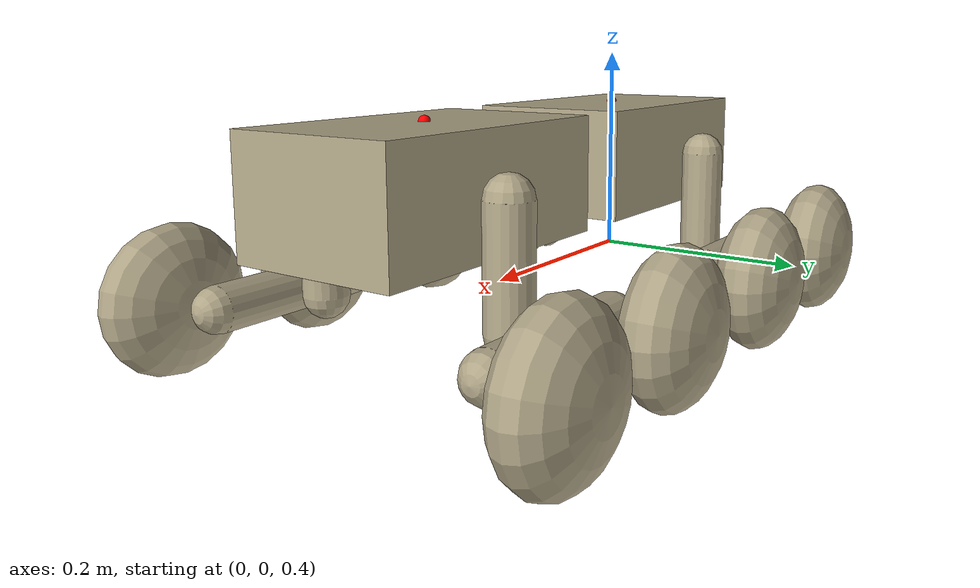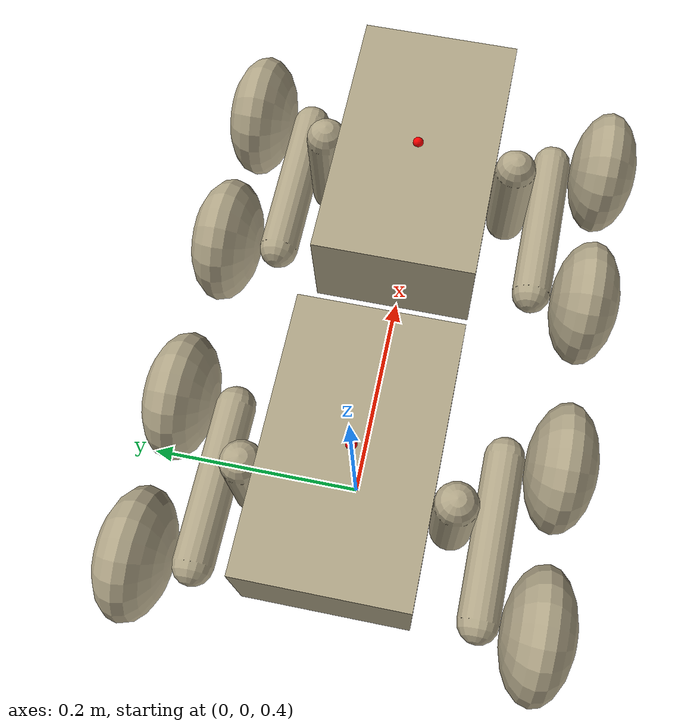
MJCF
<mujoco model="MuJoCo Model">
  <compiler angle="radian"/>

  <worldbody>
    <body name="torso" pos="0 0 0.5">
      <site name="torso_site" pos="0 0 0.05" type="sphere" rgba="1 0 0 1"/>
      <joint name="torso_joint" type="free" limited="false" actuatorfrclimited="false"/>
      <geom size="0.125 0.075 0.05" type="box" mass="10" rgba="0.694118 0.65098 0.533333 1"/>
      <body name="torso_left_thigh" pos="-0.02 0.075 0">
        <joint name="torso_left_thigh_joint" pos="0 0 0" axis="0 1 0" armature="0.0072" damping="5"/>
        <geom name="torso_left_thigh_geom" size="0.02 0.05" pos="0 0.02 -0.05" type="capsule" mass="0.5" rgba="0.694118 0.65098 0.533333 1"/>
        <body name="torso_left_shin" pos="0 0.06 -0.1">
          <joint name="torso_left_thigh_shin_joint" pos="0 0 0" axis="0 1 0" armature="0.01805" damping="5"/>
          <geom name="torso_left_shin_geom" size="0.02 0.08" quat="0.707107 0 0.707107 0" type="capsule" mass="0.5" rgba="0.694118 0.65098 0.533333 1"/>
          <body name="torso_left_front_wheel" pos="0.08 0.055 0">
            <geom name="torso_left_front_wheel_geom" size="0.065 0.065 0.035" quat="0.707107 0.707107 0 0" type="ellipsoid" solref="0.2 0.5" mass="0.5" rgba="0.694118 0.65098 0.533333 1"/>
            <site name="tlf_wheel_site" pos="0 0 0" size="0.065 0.065 0.035" quat="0.707107 0.707107 0 0" type="ellipsoid" rgba="1 0 0 1"/>
          </body>
          <body name="torso_left_rear_wheel" pos="-0.08 0.055 0">
            <geom name="torso_left_rear_wheel_geom" size="0.065 0.065 0.035" quat="0.707107 0.707107 0 0" type="ellipsoid" solref="0.2 0.5" mass="0.5" rgba="0.694118 0.65098 0.533333 1"/>
            <site name="tlr_wheel_site" pos="0 0 0" size="0.065 0.065 0.035" quat="0.707107 0.707107 0 0" type="ellipsoid" rgba="1 0 0 1"/>
          </body>
        </body>
      </body>
      <body name="torso_right_thigh" pos="-0.02 -0.075 0">
        <joint name="torso_right_thigh_joint" pos="0 0 0" axis="0 1 0" armature="0.0072" damping="5"/>
        <geom name="torso_right_thigh_geom" size="0.02 0.05" pos="0 -0.02 -0.05" type="capsule" mass="0.5" rgba="0.694118 0.65098 0.533333 1"/>
        <body name="torso_right_shin" pos="0 -0.06 -0.1">
          <joint name="torso_right_thigh_shin_joint" pos="0 0 0" axis="0 1 0" armature="0.01805" damping="5"/>
          <geom name="torso_right_shin_geom" size="0.02 0.08" quat="0.707107 0 0.707107 0" type="capsule" mass="0.5" rgba="0.694118 0.65098 0.533333 1"/>
          <body name="torso_right_front_wheel" pos="0.08 -0.055 0">
            <geom name="torso_right_front_wheel_geom" size="0.065 0.065 0.035" quat="0.707107 0.707107 0 0" type="ellipsoid" solref="0.2 0.5" mass="0.5" rgba="0.694118 0.65098 0.533333 1"/>
            <site name="trf_wheel_site" pos="0 0 0" size="0.065 0.065 0.035" quat="0.707107 0.707107 0 0" type="ellipsoid" rgba="1 0 0 1"/>
          </body>
          <body name="torso_right_rear_wheel" pos="-0.08 -0.055 0">
            <geom name="torso_right_rear_wheel_geom" size="0.065 0.065 0.035" quat="0.707107 0.707107 0 0" type="ellipsoid" solref="0.2 0.5" mass="0.5" rgba="0.694118 0.65098 0.533333 1"/>
            <site name="trr_wheel_site" pos="0 0 0" size="0.065 0.065 0.035" quat="0.707107 0.707107 0 0" type="ellipsoid" rgba="1 0 0 1"/>
          </body>
        </body>
      </body>
      <body name="head" pos="0.3 0 0">
        <site name="head_site" pos="0 0 0.05" type="sphere" rgba="1 0 0 1"/>
        <geom size="0.125 0.075 0.05" type="box" mass="10" rgba="0.694118 0.65098 0.533333 1"/>
        <body name="head_left_thigh" pos="0.02 0.075 0">
          <joint name="head_left_thigh_joint" pos="0 0 0" axis="0 1 0" armature="0.0072" damping="5"/>
          <geom name="head_left_thigh_geom" size="0.02 0.05" pos="0 0.02 -0.05" type="capsule" mass="0.5" rgba="0.694118 0.65098 0.533333 1"/>
          <body name="head_left_shin" pos="0 0.06 -0.1">
            <joint name="head_left_thigh_shin_joint" pos="0 0 0" axis="0 1 0" armature="0.01805" damping="5"/>
            <geom name="head_left_shin_geom" size="0.02 0.08" quat="0.707107 0 0.707107 0" type="capsule" mass="0.5" rgba="0.694118 0.65098 0.533333 1"/>
            <body name="head_left_front_wheel" pos="0.08 0.055 0">
              <geom name="head_left_front_wheel_geom" size="0.065 0.065 0.035" quat="0.707107 0.707107 0 0" type="ellipsoid" solref="0.2 0.5" mass="0.5" rgba="0.694118 0.65098 0.533333 1"/>
              <site name="hlf_wheel_site" pos="0 0 0" size="0.065 0.065 0.035" quat="0.707107 0.707107 0 0" type="ellipsoid" rgba="1 0 0 1"/>
            </body>
            <body name="head_left_rear_wheel" pos="-0.08 0.055 0">
              <geom name="head_left_rear_wheel_geom" size="0.065 0.065 0.035" quat="0.707107 0.707107 0 0" type="ellipsoid" solref="0.2 0.5" mass="0.5" rgba="0.694118 0.65098 0.533333 1"/>
              <site name="hlr_wheel_site" pos="0 0 0" size="0.065 0.065 0.035" quat="0.707107 0.707107 0 0" type="ellipsoid" rgba="1 0 0 1"/>
            </body>
          </body>
        </body>
        <body name="head_right_thigh" pos="0.02 -0.075 0">
          <joint name="head_right_thigh_joint" pos="0 0 0" axis="0 1 0" armature="0.0072" damping="5"/>
          <geom name="head_right_thigh_geom" size="0.02 0.05" pos="0 -0.02 -0.05" type="capsule" mass="0.5" rgba="0.694118 0.65098 0.533333 1"/>
          <body name="head_right_shin" pos="0 -0.06 -0.1">
            <joint name="head_right_thigh_shin_joint" pos="0 0 0" axis="0 1 0" armature="0.01805" damping="5"/>
            <geom name="head_right_shin_geom" size="0.02 0.08" quat="0.707107 0 0.707107 0" type="capsule" mass="0.5" rgba="0.694118 0.65098 0.533333 1"/>
            <body name="head_right_front_wheel" pos="0.08 -0.055 0">
              <geom name="head_right_front_wheel_geom" size="0.065 0.065 0.035" quat="0.707107 0.707107 0 0" type="ellipsoid" solref="0.2 0.5" mass="0.5" rgba="0.694118 0.65098 0.533333 1"/>
              <site name="hrf_wheel_site" pos="0 0 0" size="0.065 0.065 0.035" quat="0.707107 0.707107 0 0" type="ellipsoid" rgba="1 0 0 1"/>
            </body>
            <body name="head_right_rear_wheel" pos="-0.08 -0.055 0">
              <geom name="head_right_rear_wheel_geom" size="0.065 0.065 0.035" quat="0.707107 0.707107 0 0" type="ellipsoid" solref="0.2 0.5" mass="0.5" rgba="0.694118 0.65098 0.533333 1"/>
              <site name="hrr_wheel_site" pos="0 0 0" size="0.065 0.065 0.035" quat="0.707107 0.707107 0 0" type="ellipsoid" rgba="1 0 0 1"/>
            </body>
          </body>
        </body>
      </body>
    </body>
  </worldbody>

  <actuator>
    <general name="bl_hip" joint="torso_left_thigh_joint"/>
    <general name="bl_knee" joint="torso_left_thigh_shin_joint"/>
    <general name="br_hip" joint="torso_right_thigh_joint"/>
    <general name="br_knee" joint="torso_right_thigh_shin_joint"/>
    <general name="fl_hip" joint="head_left_thigh_joint"/>
    <general name="fl_knee" joint="head_left_thigh_shin_joint"/>
    <general name="fr_hip" joint="head_right_thigh_joint"/>
    <general name="fr_knee" joint="head_right_thigh_shin_joint"/>
  </actuator>
</mujoco>
